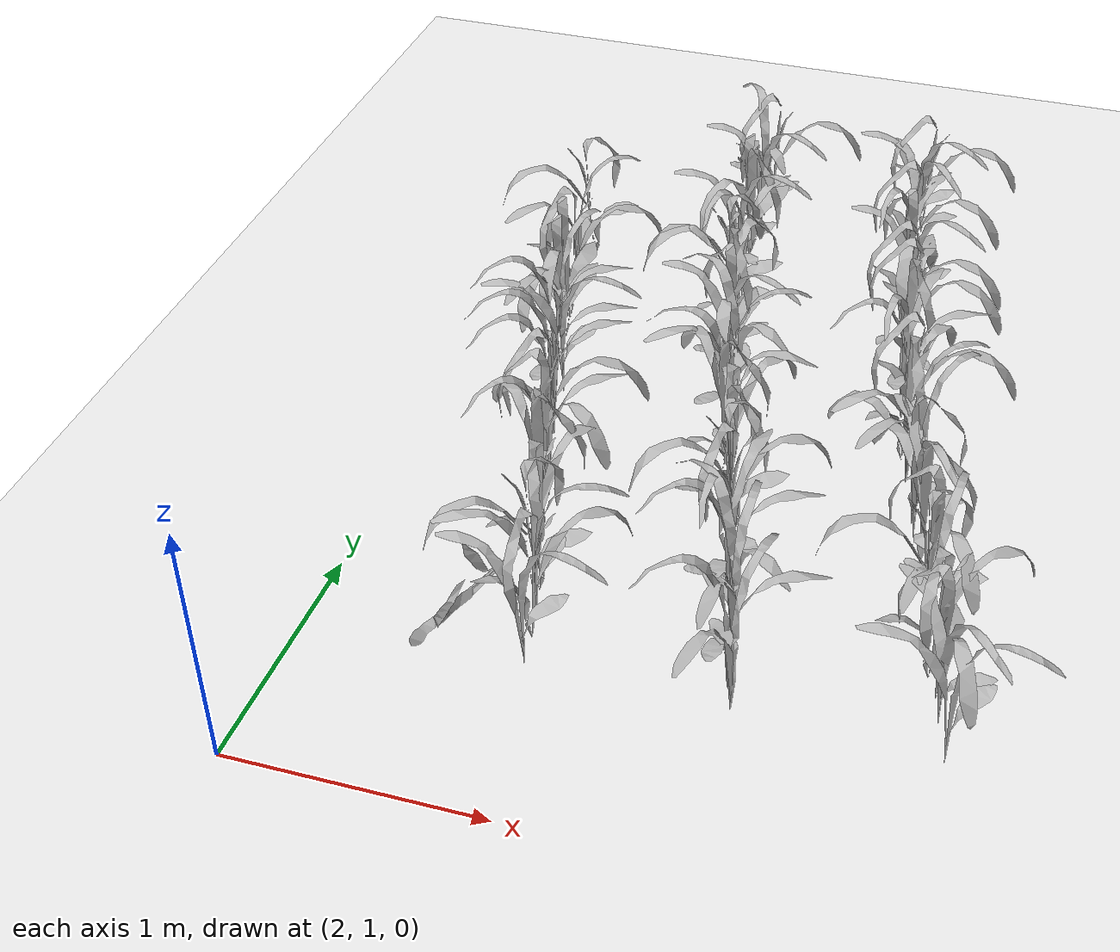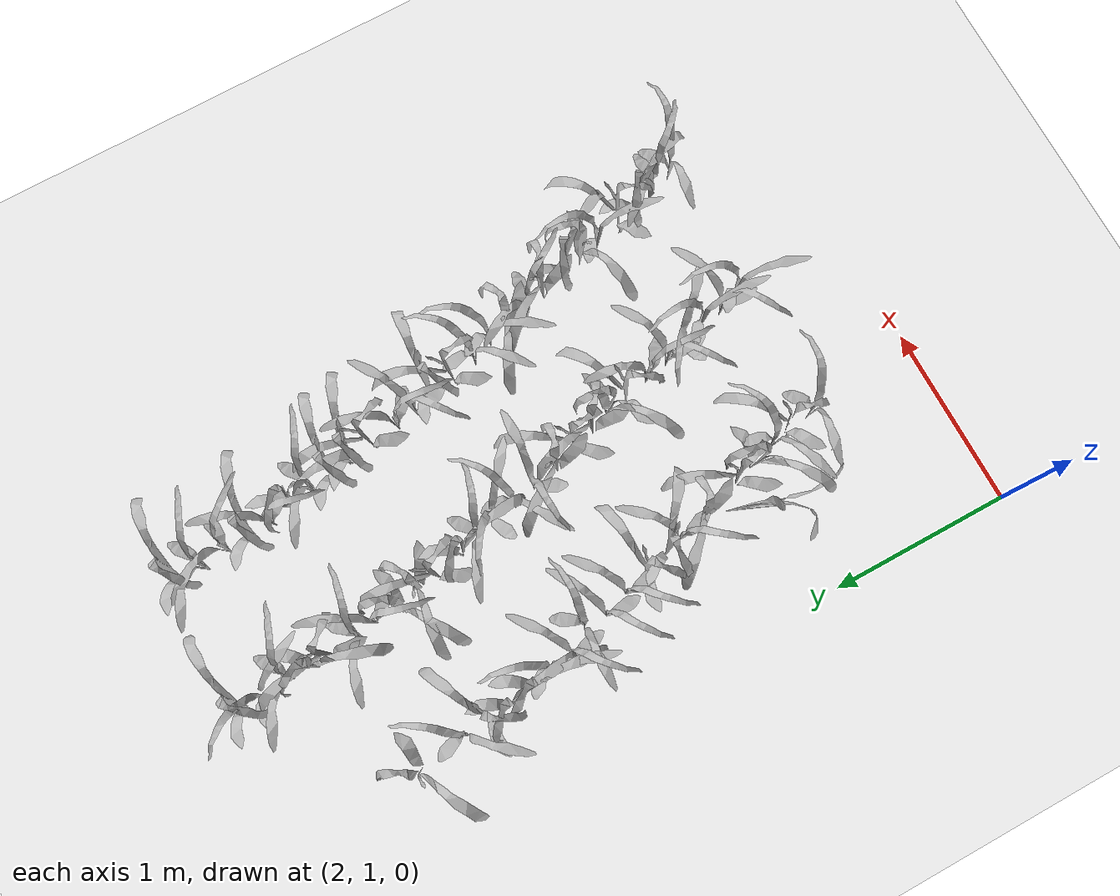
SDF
<sdf version="1.7">
 <world name="default">
  <model name="maize_02_0681">
   <pose>2.85864 1.68509 -0 -5e-06 -2.8e-05 -1.21927</pose>
   <link name="maize_02_link">
    <inertial>
     <pose>0 0 0.01 0 -0 0</pose>
     <mass>0.3</mass>
     <inertia>
      <ixx>0.00334167</ixx>
      <ixy>0</ixy>
      <ixz>0</ixz>
      <iyy>0.00334167</iyy>
      <iyz>0</iyz>
      <izz>1.66667e-05</izz>
     </inertia>
     <pose>0 0 0.1 0 -0 0</pose>
    </inertial>
    <visual name="visual">
     <geometry>
      <mesh><uri>model://maize_02/meshes/maize_02.dae</uri><scale>0.683166 0.683166 0.683166</scale></mesh>
     </geometry>
    </visual>
   </link>
   <static>0</static>
  </model>
  <model name="maize_01_0682">
   <pose>2.83686 1.83012 -0.000245 -1.2e-05 -1.4e-05 1.59859</pose>
   <link name="maize_01_link">
    <inertial>
     <pose>0 0 0.01 0 -0 0</pose>
     <mass>0.3</mass>
     <inertia>
      <ixx>0.00334167</ixx>
      <ixy>0</ixy>
      <ixz>0</ixz>
      <iyy>0.00334167</iyy>
      <iyz>0</iyz>
      <izz>1.66667e-05</izz>
     </inertia>
     <pose>0 0 0.1 0 -0 0</pose>
    </inertial>
    <visual name="visual">
     <geometry>
      <mesh><uri>model://maize_01/meshes/maize_01.dae</uri><scale>0.683166 0.683166 0.683166</scale></mesh>
     </geometry>
    </visual>
   </link>
   <static>0</static>
  </model>
  <model name="maize_02_0683">
   <pose>2.81284 1.93916 -0 -2.8e-05 5e-06 -0.647723</pose>
   <link name="maize_02_link">
    <inertial>
     <pose>0 0 0.01 0 -0 0</pose>
     <mass>0.3</mass>
     <inertia>
      <ixx>0.00334167</ixx>
      <ixy>0</ixy>
      <ixz>0</ixz>
      <iyy>0.00334167</iyy>
      <iyz>0</iyz>
      <izz>1.66667e-05</izz>
     </inertia>
     <pose>0 0 0.1 0 -0 0</pose>
    </inertial>
    <visual name="visual">
     <geometry>
      <mesh><uri>model://maize_02/meshes/maize_02.dae</uri><scale>0.683166 0.683166 0.683166</scale></mesh>
     </geometry>
    </visual>
   </link>
   <static>0</static>
  </model>
  <model name="maize_01_0684">
   <pose>2.76893 2.07996 -1e-06 6e-06 7.9e-05 -1.73099</pose>
   <link name="maize_01_link">
    <inertial>
     <pose>0 0 0.01 0 -0 0</pose>
     <mass>0.3</mass>
     <inertia>
      <ixx>0.00334167</ixx>
      <ixy>0</ixy>
      <ixz>0</ixz>
      <iyy>0.00334167</iyy>
      <iyz>0</iyz>
      <izz>1.66667e-05</izz>
     </inertia>
     <pose>0 0 0.1 0 -0 0</pose>
    </inertial>
    <visual name="visual">
     <geometry>
      <mesh><uri>model://maize_01/meshes/maize_01.dae</uri><scale>0.683166 0.683166 0.683166</scale></mesh>
     </geometry>
    </visual>
   </link>
   <static>0</static>
  </model>
  <model name="maize_01_0685">
   <pose>2.72931 2.19328 -1e-06 8.3e-05 6e-06 2.04066</pose>
   <link name="maize_01_link">
    <inertial>
     <pose>0 0 0.01 0 -0 0</pose>
     <mass>0.3</mass>
     <inertia>
      <ixx>0.00334167</ixx>
      <ixy>0</ixy>
      <ixz>0</ixz>
      <iyy>0.00334167</iyy>
      <iyz>0</iyz>
      <izz>1.66667e-05</izz>
     </inertia>
     <pose>0 0 0.1 0 -0 0</pose>
    </inertial>
    <visual name="visual">
     <geometry>
      <mesh><uri>model://maize_01/meshes/maize_01.dae</uri><scale>0.683166 0.683166 0.683166</scale></mesh>
     </geometry>
    </visual>
   </link>
   <static>0</static>
  </model>
  <model name="maize_02_0686">
   <pose>2.63367 2.31705 0.009953 1.5708 -0.00477 -0.312827</pose>
   <link name="maize_02_link">
    <inertial>
     <pose>0 0 0.01 0 -0 0</pose>
     <mass>0.3</mass>
     <inertia>
      <ixx>0.00334167</ixx>
      <ixy>0</ixy>
      <ixz>0</ixz>
      <iyy>0.00334167</iyy>
      <iyz>0</iyz>
      <izz>1.66667e-05</izz>
     </inertia>
     <pose>0 0 0.1 0 -0 0</pose>
    </inertial>
    <visual name="visual">
     <geometry>
      <mesh><uri>model://maize_02/meshes/maize_02.dae</uri><scale>0.683166 0.683166 0.683166</scale></mesh>
     </geometry>
    </visual>
   </link>
   <static>0</static>
  </model>
  <model name="maize_01_0687">
   <pose>2.66083 2.44288 -1e-06 -6e-06 -8.3e-05 3.14105</pose>
   <link name="maize_01_link">
    <inertial>
     <pose>0 0 0.01 0 -0 0</pose>
     <mass>0.3</mass>
     <inertia>
      <ixx>0.00334167</ixx>
      <ixy>0</ixy>
      <ixz>0</ixz>
      <iyy>0.00334167</iyy>
      <iyz>0</iyz>
      <izz>1.66667e-05</izz>
     </inertia>
     <pose>0 0 0.1 0 -0 0</pose>
    </inertial>
    <visual name="visual">
     <geometry>
      <mesh><uri>model://maize_01/meshes/maize_01.dae</uri><scale>0.683166 0.683166 0.683166</scale></mesh>
     </geometry>
    </visual>
   </link>
   <static>0</static>
  </model>
  <model name="maize_02_0688">
   <pose>2.61881 2.60383 -0 -2.8e-05 5e-06 2.97599</pose>
   <link name="maize_02_link">
    <inertial>
     <pose>0 0 0.01 0 -0 0</pose>
     <mass>0.3</mass>
     <inertia>
      <ixx>0.00334167</ixx>
      <ixy>0</ixy>
      <ixz>0</ixz>
      <iyy>0.00334167</iyy>
      <iyz>0</iyz>
      <izz>1.66667e-05</izz>
     </inertia>
     <pose>0 0 0.1 0 -0 0</pose>
    </inertial>
    <visual name="visual">
     <geometry>
      <mesh><uri>model://maize_02/meshes/maize_02.dae</uri><scale>0.683166 0.683166 0.683166</scale></mesh>
     </geometry>
    </visual>
   </link>
   <static>0</static>
  </model>
  <model name="maize_01_0689">
   <pose>2.57362 2.7054 -0 5e-06 2.8e-05 0.169186</pose>
   <link name="maize_01_link">
    <inertial>
     <pose>0 0 0.01 0 -0 0</pose>
     <mass>0.3</mass>
     <inertia>
      <ixx>0.00334167</ixx>
      <ixy>0</ixy>
      <ixz>0</ixz>
      <iyy>0.00334167</iyy>
      <iyz>0</iyz>
      <izz>1.66667e-05</izz>
     </inertia>
     <pose>0 0 0.1 0 -0 0</pose>
    </inertial>
    <visual name="visual">
     <geometry>
      <mesh><uri>model://maize_01/meshes/maize_01.dae</uri><scale>0.683166 0.683166 0.683166</scale></mesh>
     </geometry>
    </visual>
   </link>
   <static>0</static>
  </model>
  <model name="maize_01_0690">
   <pose>2.52674 2.8424 -0 2.8e-05 5e-06 0.960413</pose>
   <link name="maize_01_link">
    <inertial>
     <pose>0 0 0.01 0 -0 0</pose>
     <mass>0.3</mass>
     <inertia>
      <ixx>0.00334167</ixx>
      <ixy>0</ixy>
      <ixz>0</ixz>
      <iyy>0.00334167</iyy>
      <iyz>0</iyz>
      <izz>1.66667e-05</izz>
     </inertia>
     <pose>0 0 0.1 0 -0 0</pose>
    </inertial>
    <visual name="visual">
     <geometry>
      <mesh><uri>model://maize_01/meshes/maize_01.dae</uri><scale>0.683166 0.683166 0.683166</scale></mesh>
     </geometry>
    </visual>
   </link>
   <static>0</static>
  </model>
  <model name="maize_02_0691">
   <pose>2.50498 2.97878 -1e-06 6e-06 -8.6e-05 2.85564</pose>
   <link name="maize_02_link">
    <inertial>
     <pose>0 0 0.01 0 -0 0</pose>
     <mass>0.3</mass>
     <inertia>
      <ixx>0.00334167</ixx>
      <ixy>0</ixy>
      <ixz>0</ixz>
      <iyy>0.00334167</iyy>
      <iyz>0</iyz>
      <izz>1.66667e-05</izz>
     </inertia>
     <pose>0 0 0.1 0 -0 0</pose>
    </inertial>
    <visual name="visual">
     <geometry>
      <mesh><uri>model://maize_02/meshes/maize_02.dae</uri><scale>0.683166 0.683166 0.683166</scale></mesh>
     </geometry>
    </visual>
   </link>
   <static>0</static>
  </model>
  <model name="maize_02_0692">
   <pose>2.45849 3.1224 -0 5e-06 2.8e-05 2.70201</pose>
   <link name="maize_02_link">
    <inertial>
     <pose>0 0 0.01 0 -0 0</pose>
     <mass>0.3</mass>
     <inertia>
      <ixx>0.00334167</ixx>
      <ixy>0</ixy>
      <ixz>0</ixz>
      <iyy>0.00334167</iyy>
      <iyz>0</iyz>
      <izz>1.66667e-05</izz>
     </inertia>
     <pose>0 0 0.1 0 -0 0</pose>
    </inertial>
    <visual name="visual">
     <geometry>
      <mesh><uri>model://maize_02/meshes/maize_02.dae</uri><scale>0.683166 0.683166 0.683166</scale></mesh>
     </geometry>
    </visual>
   </link>
   <static>0</static>
  </model>
  <model name="maize_02_0693">
   <pose>2.44944 3.25453 -0.000245 1.4e-05 1.2e-05 -1.02514</pose>
   <link name="maize_02_link">
    <inertial>
     <pose>0 0 0.01 0 -0 0</pose>
     <mass>0.3</mass>
     <inertia>
      <ixx>0.00334167</ixx>
      <ixy>0</ixy>
      <ixz>0</ixz>
      <iyy>0.00334167</iyy>
      <iyz>0</iyz>
      <izz>1.66667e-05</izz>
     </inertia>
     <pose>0 0 0.1 0 -0 0</pose>
    </inertial>
    <visual name="visual">
     <geometry>
      <mesh><uri>model://maize_02/meshes/maize_02.dae</uri><scale>0.683166 0.683166 0.683166</scale></mesh>
     </geometry>
    </visual>
   </link>
   <static>0</static>
  </model>
  <model name="maize_02_0694">
   <pose>2.37591 3.3643 -0 -2.8e-05 -5e-06 2.81088</pose>
   <link name="maize_02_link">
    <inertial>
     <pose>0 0 0.01 0 -0 0</pose>
     <mass>0.3</mass>
     <inertia>
      <ixx>0.00334167</ixx>
      <ixy>0</ixy>
      <ixz>0</ixz>
      <iyy>0.00334167</iyy>
      <iyz>0</iyz>
      <izz>1.66667e-05</izz>
     </inertia>
     <pose>0 0 0.1 0 -0 0</pose>
    </inertial>
    <visual name="visual">
     <geometry>
      <mesh><uri>model://maize_02/meshes/maize_02.dae</uri><scale>0.683166 0.683166 0.683166</scale></mesh>
     </geometry>
    </visual>
   </link>
   <static>0</static>
  </model>
  <model name="maize_02_0695">
   <pose>2.35839 3.49972 -0 -2.8e-05 5e-06 0.286672</pose>
   <link name="maize_02_link">
    <inertial>
     <pose>0 0 0.01 0 -0 0</pose>
     <mass>0.3</mass>
     <inertia>
      <ixx>0.00334167</ixx>
      <ixy>0</ixy>
      <ixz>0</ixz>
      <iyy>0.00334167</iyy>
      <iyz>0</iyz>
      <izz>1.66667e-05</izz>
     </inertia>
     <pose>0 0 0.1 0 -0 0</pose>
    </inertial>
    <visual name="visual">
     <geometry>
      <mesh><uri>model://maize_02/meshes/maize_02.dae</uri><scale>0.683166 0.683166 0.683166</scale></mesh>
     </geometry>
    </visual>
   </link>
   <static>0</static>
  </model>
  <model name="maize_01_0696">
   <pose>2.32218 3.62678 -1e-06 8.9e-05 6e-06 -0.851627</pose>
   <link name="maize_01_link">
    <inertial>
     <pose>0 0 0.01 0 -0 0</pose>
     <mass>0.3</mass>
     <inertia>
      <ixx>0.00334167</ixx>
      <ixy>0</ixy>
      <ixz>0</ixz>
      <iyy>0.00334167</iyy>
      <iyz>0</iyz>
      <izz>1.66667e-05</izz>
     </inertia>
     <pose>0 0 0.1 0 -0 0</pose>
    </inertial>
    <visual name="visual">
     <geometry>
      <mesh><uri>model://maize_01/meshes/maize_01.dae</uri><scale>0.683166 0.683166 0.683166</scale></mesh>
     </geometry>
    </visual>
   </link>
   <static>0</static>
  </model>
  <model name="maize_01_0697">
   <pose>2.29265 3.77245 -0.000245 1.2e-05 1.4e-05 -0.662671</pose>
   <link name="maize_01_link">
    <inertial>
     <pose>0 0 0.01 0 -0 0</pose>
     <mass>0.3</mass>
     <inertia>
      <ixx>0.00334167</ixx>
      <ixy>0</ixy>
      <ixz>0</ixz>
      <iyy>0.00334167</iyy>
      <iyz>0</iyz>
      <izz>1.66667e-05</izz>
     </inertia>
     <pose>0 0 0.1 0 -0 0</pose>
    </inertial>
    <visual name="visual">
     <geometry>
      <mesh><uri>model://maize_01/meshes/maize_01.dae</uri><scale>0.683166 0.683166 0.683166</scale></mesh>
     </geometry>
    </visual>
   </link>
   <static>0</static>
  </model>
  <model name="maize_01_0698">
   <pose>2.27115 3.87505 1e-06 3e-06 -0.000156 1.244</pose>
   <link name="maize_01_link">
    <inertial>
     <pose>0 0 0.01 0 -0 0</pose>
     <mass>0.3</mass>
     <inertia>
      <ixx>0.00334167</ixx>
      <ixy>0</ixy>
      <ixz>0</ixz>
      <iyy>0.00334167</iyy>
      <iyz>0</iyz>
      <izz>1.66667e-05</izz>
     </inertia>
     <pose>0 0 0.1 0 -0 0</pose>
    </inertial>
    <visual name="visual">
     <geometry>
      <mesh><uri>model://maize_01/meshes/maize_01.dae</uri><scale>0.683166 0.683166 0.683166</scale></mesh>
     </geometry>
    </visual>
   </link>
   <static>0</static>
  </model>
  <model name="maize_02_0699">
   <pose>2.2586 4.01809 1e-06 3e-06 -0.000156 -0.118566</pose>
   <link name="maize_02_link">
    <inertial>
     <pose>0 0 0.01 0 -0 0</pose>
     <mass>0.3</mass>
     <inertia>
      <ixx>0.00334167</ixx>
      <ixy>0</ixy>
      <ixz>0</ixz>
      <iyy>0.00334167</iyy>
      <iyz>0</iyz>
      <izz>1.66667e-05</izz>
     </inertia>
     <pose>0 0 0.1 0 -0 0</pose>
    </inertial>
    <visual name="visual">
     <geometry>
      <mesh><uri>model://maize_02/meshes/maize_02.dae</uri><scale>0.683166 0.683166 0.683166</scale></mesh>
     </geometry>
    </visual>
   </link>
   <static>0</static>
  </model>
  <model name="maize_01_0701">
   <pose>2.23377 4.30201 -0 2.8e-05 -5e-06 -1.86624</pose>
   <link name="maize_01_link">
    <inertial>
     <pose>0 0 0.01 0 -0 0</pose>
     <mass>0.3</mass>
     <inertia>
      <ixx>0.00334167</ixx>
      <ixy>0</ixy>
      <ixz>0</ixz>
      <iyy>0.00334167</iyy>
      <iyz>0</iyz>
      <izz>1.66667e-05</izz>
     </inertia>
     <pose>0 0 0.1 0 -0 0</pose>
    </inertial>
    <visual name="visual">
     <geometry>
      <mesh><uri>model://maize_01/meshes/maize_01.dae</uri><scale>0.683166 0.683166 0.683166</scale></mesh>
     </geometry>
    </visual>
   </link>
   <static>0</static>
  </model>
  <model name="maize_02_0758">
   <pose>3.61741 1.6928 -0.000245 -1.2e-05 -1.4e-05 0.318507</pose>
   <link name="maize_02_link">
    <inertial>
     <pose>0 0 0.01 0 -0 0</pose>
     <mass>0.3</mass>
     <inertia>
      <ixx>0.00334167</ixx>
      <ixy>0</ixy>
      <ixz>0</ixz>
      <iyy>0.00334167</iyy>
      <iyz>0</iyz>
      <izz>1.66667e-05</izz>
     </inertia>
     <pose>0 0 0.1 0 -0 0</pose>
    </inertial>
    <visual name="visual">
     <geometry>
      <mesh><uri>model://maize_02/meshes/maize_02.dae</uri><scale>0.683166 0.683166 0.683166</scale></mesh>
     </geometry>
    </visual>
   </link>
   <static>0</static>
  </model>
  <model name="maize_02_0759">
   <pose>3.57661 1.80344 -0 -2.8e-05 5e-06 2.62864</pose>
   <link name="maize_02_link">
    <inertial>
     <pose>0 0 0.01 0 -0 0</pose>
     <mass>0.3</mass>
     <inertia>
      <ixx>0.00334167</ixx>
      <ixy>0</ixy>
      <ixz>0</ixz>
      <iyy>0.00334167</iyy>
      <iyz>0</iyz>
      <izz>1.66667e-05</izz>
     </inertia>
     <pose>0 0 0.1 0 -0 0</pose>
    </inertial>
    <visual name="visual">
     <geometry>
      <mesh><uri>model://maize_02/meshes/maize_02.dae</uri><scale>0.683166 0.683166 0.683166</scale></mesh>
     </geometry>
    </visual>
   </link>
   <static>0</static>
  </model>
  <model name="maize_02_0760">
   <pose>3.55474 1.94243 -0.000245 1.4e-05 1.2e-05 0.541066</pose>
   <link name="maize_02_link">
    <inertial>
     <pose>0 0 0.01 0 -0 0</pose>
     <mass>0.3</mass>
     <inertia>
      <ixx>0.00334167</ixx>
      <ixy>0</ixy>
      <ixz>0</ixz>
      <iyy>0.00334167</iyy>
      <iyz>0</iyz>
      <izz>1.66667e-05</izz>
     </inertia>
     <pose>0 0 0.1 0 -0 0</pose>
    </inertial>
    <visual name="visual">
     <geometry>
      <mesh><uri>model://maize_02/meshes/maize_02.dae</uri><scale>0.683166 0.683166 0.683166</scale></mesh>
     </geometry>
    </visual>
   </link>
   <static>0</static>
  </model>
  <model name="maize_02_0761">
   <pose>3.51443 2.0907 -0.000245 1.2e-05 1.4e-05 1.44294</pose>
   <link name="maize_02_link">
    <inertial>
     <pose>0 0 0.01 0 -0 0</pose>
     <mass>0.3</mass>
     <inertia>
      <ixx>0.00334167</ixx>
      <ixy>0</ixy>
      <ixz>0</ixz>
      <iyy>0.00334167</iyy>
      <iyz>0</iyz>
      <izz>1.66667e-05</izz>
     </inertia>
     <pose>0 0 0.1 0 -0 0</pose>
    </inertial>
    <visual name="visual">
     <geometry>
      <mesh><uri>model://maize_02/meshes/maize_02.dae</uri><scale>0.683166 0.683166 0.683166</scale></mesh>
     </geometry>
    </visual>
   </link>
   <static>0</static>
  </model>
  <model name="maize_02_0762">
   <pose>3.46874 2.19632 -0.000245 1.2e-05 1.4e-05 2.70495</pose>
   <link name="maize_02_link">
    <inertial>
     <pose>0 0 0.01 0 -0 0</pose>
     <mass>0.3</mass>
     <inertia>
      <ixx>0.00334167</ixx>
      <ixy>0</ixy>
      <ixz>0</ixz>
      <iyy>0.00334167</iyy>
      <iyz>0</iyz>
      <izz>1.66667e-05</izz>
     </inertia>
     <pose>0 0 0.1 0 -0 0</pose>
    </inertial>
    <visual name="visual">
     <geometry>
      <mesh><uri>model://maize_02/meshes/maize_02.dae</uri><scale>0.683166 0.683166 0.683166</scale></mesh>
     </geometry>
    </visual>
   </link>
   <static>0</static>
  </model>
  <model name="maize_02_0763">
   <pose>3.43889 2.33462 -1e-06 -6e-06 -8.6e-05 -2.6817</pose>
   <link name="maize_02_link">
    <inertial>
     <pose>0 0 0.01 0 -0 0</pose>
     <mass>0.3</mass>
     <inertia>
      <ixx>0.00334167</ixx>
      <ixy>0</ixy>
      <ixz>0</ixz>
      <iyy>0.00334167</iyy>
      <iyz>0</iyz>
      <izz>1.66667e-05</izz>
     </inertia>
     <pose>0 0 0.1 0 -0 0</pose>
    </inertial>
    <visual name="visual">
     <geometry>
      <mesh><uri>model://maize_02/meshes/maize_02.dae</uri><scale>0.683166 0.683166 0.683166</scale></mesh>
     </geometry>
    </visual>
   </link>
   <static>0</static>
  </model>
  <model name="maize_01_0764">
   <pose>3.37742 2.48541 -0.000245 -1.4e-05 -1.2e-05 1.36684</pose>
   <link name="maize_01_link">
    <inertial>
     <pose>0 0 0.01 0 -0 0</pose>
     <mass>0.3</mass>
     <inertia>
      <ixx>0.00334167</ixx>
      <ixy>0</ixy>
      <ixz>0</ixz>
      <iyy>0.00334167</iyy>
      <iyz>0</iyz>
      <izz>1.66667e-05</izz>
     </inertia>
     <pose>0 0 0.1 0 -0 0</pose>
    </inertial>
    <visual name="visual">
     <geometry>
      <mesh><uri>model://maize_01/meshes/maize_01.dae</uri><scale>0.683166 0.683166 0.683166</scale></mesh>
     </geometry>
    </visual>
   </link>
   <static>0</static>
  </model>
  <model name="maize_01_0765">
   <pose>3.37521 2.60744 -1e-06 -8.9e-05 6e-06 -1.7415</pose>
   <link name="maize_01_link">
    <inertial>
     <pose>0 0 0.01 0 -0 0</pose>
     <mass>0.3</mass>
     <inertia>
      <ixx>0.00334167</ixx>
      <ixy>0</ixy>
      <ixz>0</ixz>
      <iyy>0.00334167</iyy>
      <iyz>0</iyz>
      <izz>1.66667e-05</izz>
     </inertia>
     <pose>0 0 0.1 0 -0 0</pose>
    </inertial>
    <visual name="visual">
     <geometry>
      <mesh><uri>model://maize_01/meshes/maize_01.dae</uri><scale>0.683166 0.683166 0.683166</scale></mesh>
     </geometry>
    </visual>
   </link>
   <static>0</static>
  </model>
  <model name="maize_01_0766">
   <pose>3.33444 2.71448 -0 5e-06 2.8e-05 2.68187</pose>
   <link name="maize_01_link">
    <inertial>
     <pose>0 0 0.01 0 -0 0</pose>
     <mass>0.3</mass>
     <inertia>
      <ixx>0.00334167</ixx>
      <ixy>0</ixy>
      <ixz>0</ixz>
      <iyy>0.00334167</iyy>
      <iyz>0</iyz>
      <izz>1.66667e-05</izz>
     </inertia>
     <pose>0 0 0.1 0 -0 0</pose>
    </inertial>
    <visual name="visual">
     <geometry>
      <mesh><uri>model://maize_01/meshes/maize_01.dae</uri><scale>0.683166 0.683166 0.683166</scale></mesh>
     </geometry>
    </visual>
   </link>
   <static>0</static>
  </model>
  <model name="maize_01_0767">
   <pose>3.28709 2.84294 -0 -5e-06 2.8e-05 1.94393</pose>
   <link name="maize_01_link">
    <inertial>
     <pose>0 0 0.01 0 -0 0</pose>
     <mass>0.3</mass>
     <inertia>
      <ixx>0.00334167</ixx>
      <ixy>0</ixy>
      <ixz>0</ixz>
      <iyy>0.00334167</iyy>
      <iyz>0</iyz>
      <izz>1.66667e-05</izz>
     </inertia>
     <pose>0 0 0.1 0 -0 0</pose>
    </inertial>
    <visual name="visual">
     <geometry>
      <mesh><uri>model://maize_01/meshes/maize_01.dae</uri><scale>0.683166 0.683166 0.683166</scale></mesh>
     </geometry>
    </visual>
   </link>
   <static>0</static>
  </model>
  <model name="maize_01_0768">
   <pose>3.23921 2.97679 -0.000245 -1.2e-05 1.4e-05 3.04764</pose>
   <link name="maize_01_link">
    <inertial>
     <pose>0 0 0.01 0 -0 0</pose>
     <mass>0.3</mass>
     <inertia>
      <ixx>0.00334167</ixx>
      <ixy>0</ixy>
      <ixz>0</ixz>
      <iyy>0.00334167</iyy>
      <iyz>0</iyz>
      <izz>1.66667e-05</izz>
     </inertia>
     <pose>0 0 0.1 0 -0 0</pose>
    </inertial>
    <visual name="visual">
     <geometry>
      <mesh><uri>model://maize_01/meshes/maize_01.dae</uri><scale>0.683166 0.683166 0.683166</scale></mesh>
     </geometry>
    </visual>
   </link>
   <static>0</static>
  </model>
  <model name="maize_02_0769">
   <pose>3.21342 3.1286 -0.000245 1.2e-05 1.4e-05 2.14536</pose>
   <link name="maize_02_link">
    <inertial>
     <pose>0 0 0.01 0 -0 0</pose>
     <mass>0.3</mass>
     <inertia>
      <ixx>0.00334167</ixx>
      <ixy>0</ixy>
      <ixz>0</ixz>
      <iyy>0.00334167</iyy>
      <iyz>0</iyz>
      <izz>1.66667e-05</izz>
     </inertia>
     <pose>0 0 0.1 0 -0 0</pose>
    </inertial>
    <visual name="visual">
     <geometry>
      <mesh><uri>model://maize_02/meshes/maize_02.dae</uri><scale>0.683166 0.683166 0.683166</scale></mesh>
     </geometry>
    </visual>
   </link>
   <static>0</static>
  </model>
  <model name="maize_02_0770">
   <pose>3.1745 3.26201 1e-06 -3e-06 -0.000156 -0.435079</pose>
   <link name="maize_02_link">
    <inertial>
     <pose>0 0 0.01 0 -0 0</pose>
     <mass>0.3</mass>
     <inertia>
      <ixx>0.00334167</ixx>
      <ixy>0</ixy>
      <ixz>0</ixz>
      <iyy>0.00334167</iyy>
      <iyz>0</iyz>
      <izz>1.66667e-05</izz>
     </inertia>
     <pose>0 0 0.1 0 -0 0</pose>
    </inertial>
    <visual name="visual">
     <geometry>
      <mesh><uri>model://maize_02/meshes/maize_02.dae</uri><scale>0.683166 0.683166 0.683166</scale></mesh>
     </geometry>
    </visual>
   </link>
   <static>0</static>
  </model>
  <model name="maize_02_0771">
   <pose>3.16677 3.39262 -0.000245 1.2e-05 -1.4e-05 1.49481</pose>
   <link name="maize_02_link">
    <inertial>
     <pose>0 0 0.01 0 -0 0</pose>
     <mass>0.3</mass>
     <inertia>
      <ixx>0.00334167</ixx>
      <ixy>0</ixy>
      <ixz>0</ixz>
      <iyy>0.00334167</iyy>
      <iyz>0</iyz>
      <izz>1.66667e-05</izz>
     </inertia>
     <pose>0 0 0.1 0 -0 0</pose>
    </inertial>
    <visual name="visual">
     <geometry>
      <mesh><uri>model://maize_02/meshes/maize_02.dae</uri><scale>0.683166 0.683166 0.683166</scale></mesh>
     </geometry>
    </visual>
   </link>
   <static>0</static>
  </model>
  <model name="maize_02_0772">
   <pose>3.09443 3.50902 -0 6e-06 -4.8e-05 -1.36464</pose>
   <link name="maize_02_link">
    <inertial>
     <pose>0 0 0.01 0 -0 0</pose>
     <mass>0.3</mass>
     <inertia>
      <ixx>0.00334167</ixx>
      <ixy>0</ixy>
      <ixz>0</ixz>
      <iyy>0.00334167</iyy>
      <iyz>0</iyz>
      <izz>1.66667e-05</izz>
     </inertia>
     <pose>0 0 0.1 0 -0 0</pose>
    </inertial>
    <visual name="visual">
     <geometry>
      <mesh><uri>model://maize_02/meshes/maize_02.dae</uri><scale>0.683166 0.683166 0.683166</scale></mesh>
     </geometry>
    </visual>
   </link>
   <static>0</static>
  </model>
  <model name="maize_01_0773">
   <pose>3.08192 3.6207 1e-06 -0.000156 -3e-06 -0.626444</pose>
   <link name="maize_01_link">
    <inertial>
     <pose>0 0 0.01 0 -0 0</pose>
     <mass>0.3</mass>
     <inertia>
      <ixx>0.00334167</ixx>
      <ixy>0</ixy>
      <ixz>0</ixz>
      <iyy>0.00334167</iyy>
      <iyz>0</iyz>
      <izz>1.66667e-05</izz>
     </inertia>
     <pose>0 0 0.1 0 -0 0</pose>
    </inertial>
    <visual name="visual">
     <geometry>
      <mesh><uri>model://maize_01/meshes/maize_01.dae</uri><scale>0.683166 0.683166 0.683166</scale></mesh>
     </geometry>
    </visual>
   </link>
   <static>0</static>
  </model>
  <model name="maize_01_0774">
   <pose>3.03495 3.77098 1e-06 -0.000156 3e-06 2.30118</pose>
   <link name="maize_01_link">
    <inertial>
     <pose>0 0 0.01 0 -0 0</pose>
     <mass>0.3</mass>
     <inertia>
      <ixx>0.00334167</ixx>
      <ixy>0</ixy>
      <ixz>0</ixz>
      <iyy>0.00334167</iyy>
      <iyz>0</iyz>
      <izz>1.66667e-05</izz>
     </inertia>
     <pose>0 0 0.1 0 -0 0</pose>
    </inertial>
    <visual name="visual">
     <geometry>
      <mesh><uri>model://maize_01/meshes/maize_01.dae</uri><scale>0.683166 0.683166 0.683166</scale></mesh>
     </geometry>
    </visual>
   </link>
   <static>0</static>
  </model>
  <model name="maize_01_0775">
   <pose>3.03702 3.88652 -0 5e-06 2.8e-05 -2.44032</pose>
   <link name="maize_01_link">
    <inertial>
     <pose>0 0 0.01 0 -0 0</pose>
     <mass>0.3</mass>
     <inertia>
      <ixx>0.00334167</ixx>
      <ixy>0</ixy>
      <ixz>0</ixz>
      <iyy>0.00334167</iyy>
      <iyz>0</iyz>
      <izz>1.66667e-05</izz>
     </inertia>
     <pose>0 0 0.1 0 -0 0</pose>
    </inertial>
    <visual name="visual">
     <geometry>
      <mesh><uri>model://maize_01/meshes/maize_01.dae</uri><scale>0.683166 0.683166 0.683166</scale></mesh>
     </geometry>
    </visual>
   </link>
   <static>0</static>
  </model>
  <model name="maize_01_0776">
   <pose>2.98929 4.01502 -0 -4.8e-05 6e-06 -1.78871</pose>
   <link name="maize_01_link">
    <inertial>
     <pose>0 0 0.01 0 -0 0</pose>
     <mass>0.3</mass>
     <inertia>
      <ixx>0.00334167</ixx>
      <ixy>0</ixy>
      <ixz>0</ixz>
      <iyy>0.00334167</iyy>
      <iyz>0</iyz>
      <izz>1.66667e-05</izz>
     </inertia>
     <pose>0 0 0.1 0 -0 0</pose>
    </inertial>
    <visual name="visual">
     <geometry>
      <mesh><uri>model://maize_01/meshes/maize_01.dae</uri><scale>0.683166 0.683166 0.683166</scale></mesh>
     </geometry>
    </visual>
   </link>
   <static>0</static>
  </model>
  <model name="maize_02_0777">
   <pose>2.98387 4.16611 1e-06 0.000156 -3e-06 -2.89064</pose>
   <link name="maize_02_link">
    <inertial>
     <pose>0 0 0.01 0 -0 0</pose>
     <mass>0.3</mass>
     <inertia>
      <ixx>0.00334167</ixx>
      <ixy>0</ixy>
      <ixz>0</ixz>
      <iyy>0.00334167</iyy>
      <iyz>0</iyz>
      <izz>1.66667e-05</izz>
     </inertia>
     <pose>0 0 0.1 0 -0 0</pose>
    </inertial>
    <visual name="visual">
     <geometry>
      <mesh><uri>model://maize_02/meshes/maize_02.dae</uri><scale>0.683166 0.683166 0.683166</scale></mesh>
     </geometry>
    </visual>
   </link>
   <static>0</static>
  </model>
  <model name="maize_02_0778">
   <pose>2.93829 4.26887 -1e-06 -8.9e-05 -6e-06 -1.25895</pose>
   <link name="maize_02_link">
    <inertial>
     <pose>0 0 0.01 0 -0 0</pose>
     <mass>0.3</mass>
     <inertia>
      <ixx>0.00334167</ixx>
      <ixy>0</ixy>
      <ixz>0</ixz>
      <iyy>0.00334167</iyy>
      <iyz>0</iyz>
      <izz>1.66667e-05</izz>
     </inertia>
     <pose>0 0 0.1 0 -0 0</pose>
    </inertial>
    <visual name="visual">
     <geometry>
      <mesh><uri>model://maize_02/meshes/maize_02.dae</uri><scale>0.683166 0.683166 0.683166</scale></mesh>
     </geometry>
    </visual>
   </link>
   <static>0</static>
  </model>
  <model name="maize_01_0779">
   <pose>2.94885 4.42769 -0 2.8e-05 5e-06 2.61046</pose>
   <link name="maize_01_link">
    <inertial>
     <pose>0 0 0.01 0 -0 0</pose>
     <mass>0.3</mass>
     <inertia>
      <ixx>0.00334167</ixx>
      <ixy>0</ixy>
      <ixz>0</ixz>
      <iyy>0.00334167</iyy>
      <iyz>0</iyz>
      <izz>1.66667e-05</izz>
     </inertia>
     <pose>0 0 0.1 0 -0 0</pose>
    </inertial>
    <visual name="visual">
     <geometry>
      <mesh><uri>model://maize_01/meshes/maize_01.dae</uri><scale>0.683166 0.683166 0.683166</scale></mesh>
     </geometry>
    </visual>
   </link>
   <static>0</static>
  </model>
  <model name="maize_01_0780">
   <pose>2.92502 4.52952 -0 -2.8e-05 -5e-06 -1.08564</pose>
   <link name="maize_01_link">
    <inertial>
     <pose>0 0 0.01 0 -0 0</pose>
     <mass>0.3</mass>
     <inertia>
      <ixx>0.00334167</ixx>
      <ixy>0</ixy>
      <ixz>0</ixz>
      <iyy>0.00334167</iyy>
      <iyz>0</iyz>
      <izz>1.66667e-05</izz>
     </inertia>
     <pose>0 0 0.1 0 -0 0</pose>
    </inertial>
    <visual name="visual">
     <geometry>
      <mesh><uri>model://maize_01/meshes/maize_01.dae</uri><scale>0.683166 0.683166 0.683166</scale></mesh>
     </geometry>
    </visual>
   </link>
   <static>0</static>
  </model>
  <model name="maize_02_0781">
   <pose>2.93862 4.67173 -0 5e-06 2.8e-05 -1.42433</pose>
   <link name="maize_02_link">
    <inertial>
     <pose>0 0 0.01 0 -0 0</pose>
     <mass>0.3</mass>
     <inertia>
      <ixx>0.00334167</ixx>
      <ixy>0</ixy>
      <ixz>0</ixz>
      <iyy>0.00334167</iyy>
      <iyz>0</iyz>
      <izz>1.66667e-05</izz>
     </inertia>
     <pose>0 0 0.1 0 -0 0</pose>
    </inertial>
    <visual name="visual">
     <geometry>
      <mesh><uri>model://maize_02/meshes/maize_02.dae</uri><scale>0.683166 0.683166 0.683166</scale></mesh>
     </geometry>
    </visual>
   </link>
   <static>0</static>
  </model>
  <model name="maize_02_0782">
   <pose>2.91746 4.8098 -0 5e-06 -2.8e-05 1.10189</pose>
   <link name="maize_02_link">
    <inertial>
     <pose>0 0 0.01 0 -0 0</pose>
     <mass>0.3</mass>
     <inertia>
      <ixx>0.00334167</ixx>
      <ixy>0</ixy>
      <ixz>0</ixz>
      <iyy>0.00334167</iyy>
      <iyz>0</iyz>
      <izz>1.66667e-05</izz>
     </inertia>
     <pose>0 0 0.1 0 -0 0</pose>
    </inertial>
    <visual name="visual">
     <geometry>
      <mesh><uri>model://maize_02/meshes/maize_02.dae</uri><scale>0.683166 0.683166 0.683166</scale></mesh>
     </geometry>
    </visual>
   </link>
   <static>0</static>
  </model>
  <model name="maize_01_0783">
   <pose>2.92131 4.93248 -1e-06 6e-06 8.3e-05 0.900918</pose>
   <link name="maize_01_link">
    <inertial>
     <pose>0 0 0.01 0 -0 0</pose>
     <mass>0.3</mass>
     <inertia>
      <ixx>0.00334167</ixx>
      <ixy>0</ixy>
      <ixz>0</ixz>
      <iyy>0.00334167</iyy>
      <iyz>0</iyz>
      <izz>1.66667e-05</izz>
     </inertia>
     <pose>0 0 0.1 0 -0 0</pose>
    </inertial>
    <visual name="visual">
     <geometry>
      <mesh><uri>model://maize_01/meshes/maize_01.dae</uri><scale>0.683166 0.683166 0.683166</scale></mesh>
     </geometry>
    </visual>
   </link>
   <static>0</static>
  </model>
  <model name="maize_02_0835">
   <pose>4.37341 1.67672 -1e-06 6e-06 -8.6e-05 -1.1624</pose>
   <link name="maize_02_link">
    <inertial>
     <pose>0 0 0.01 0 -0 0</pose>
     <mass>0.3</mass>
     <inertia>
      <ixx>0.00334167</ixx>
      <ixy>0</ixy>
      <ixz>0</ixz>
      <iyy>0.00334167</iyy>
      <iyz>0</iyz>
      <izz>1.66667e-05</izz>
     </inertia>
     <pose>0 0 0.1 0 -0 0</pose>
    </inertial>
    <visual name="visual">
     <geometry>
      <mesh><uri>model://maize_02/meshes/maize_02.dae</uri><scale>0.683166 0.683166 0.683166</scale></mesh>
     </geometry>
    </visual>
   </link>
   <static>0</static>
  </model>
  <model name="maize_02_0836">
   <pose>4.32406 1.81183 1e-06 -0.000116 -2e-06 -1.85933</pose>
   <link name="maize_02_link">
    <inertial>
     <pose>0 0 0.01 0 -0 0</pose>
     <mass>0.3</mass>
     <inertia>
      <ixx>0.00334167</ixx>
      <ixy>0</ixy>
      <ixz>0</ixz>
      <iyy>0.00334167</iyy>
      <iyz>0</iyz>
      <izz>1.66667e-05</izz>
     </inertia>
     <pose>0 0 0.1 0 -0 0</pose>
    </inertial>
    <visual name="visual">
     <geometry>
      <mesh><uri>model://maize_02/meshes/maize_02.dae</uri><scale>0.683166 0.683166 0.683166</scale></mesh>
     </geometry>
    </visual>
   </link>
   <static>0</static>
  </model>
  <model name="maize_01_0837">
   <pose>4.28975 1.94245 -0.000245 1.2e-05 -1.4e-05 -0.386224</pose>
   <link name="maize_01_link">
    <inertial>
     <pose>0 0 0.01 0 -0 0</pose>
     <mass>0.3</mass>
     <inertia>
      <ixx>0.00334167</ixx>
      <ixy>0</ixy>
      <ixz>0</ixz>
      <iyy>0.00334167</iyy>
      <iyz>0</iyz>
      <izz>1.66667e-05</izz>
     </inertia>
     <pose>0 0 0.1 0 -0 0</pose>
    </inertial>
    <visual name="visual">
     <geometry>
      <mesh><uri>model://maize_01/meshes/maize_01.dae</uri><scale>0.683166 0.683166 0.683166</scale></mesh>
     </geometry>
    </visual>
   </link>
   <static>0</static>
  </model>
  <model name="maize_01_0838">
   <pose>4.24959 2.04535 -1e-06 8.6e-05 6e-06 1.56388</pose>
   <link name="maize_01_link">
    <inertial>
     <pose>0 0 0.01 0 -0 0</pose>
     <mass>0.3</mass>
     <inertia>
      <ixx>0.00334167</ixx>
      <ixy>0</ixy>
      <ixz>0</ixz>
      <iyy>0.00334167</iyy>
      <iyz>0</iyz>
      <izz>1.66667e-05</izz>
     </inertia>
     <pose>0 0 0.1 0 -0 0</pose>
    </inertial>
    <visual name="visual">
     <geometry>
      <mesh><uri>model://maize_01/meshes/maize_01.dae</uri><scale>0.683166 0.683166 0.683166</scale></mesh>
     </geometry>
    </visual>
   </link>
   <static>0</static>
  </model>
  <model name="maize_02_0839">
   <pose>4.21591 2.20441 -0.000245 -1.4e-05 1.2e-05 0.440621</pose>
   <link name="maize_02_link">
    <inertial>
     <pose>0 0 0.01 0 -0 0</pose>
     <mass>0.3</mass>
     <inertia>
      <ixx>0.00334167</ixx>
      <ixy>0</ixy>
      <ixz>0</ixz>
      <iyy>0.00334167</iyy>
      <iyz>0</iyz>
      <izz>1.66667e-05</izz>
     </inertia>
     <pose>0 0 0.1 0 -0 0</pose>
    </inertial>
    <visual name="visual">
     <geometry>
      <mesh><uri>model://maize_02/meshes/maize_02.dae</uri><scale>0.683166 0.683166 0.683166</scale></mesh>
     </geometry>
    </visual>
   </link>
   <static>0</static>
  </model>
  <model name="maize_01_0840">
   <pose>4.18689 2.32714 -0 -2.8e-05 5e-06 -2.10264</pose>
   <link name="maize_01_link">
    <inertial>
     <pose>0 0 0.01 0 -0 0</pose>
     <mass>0.3</mass>
     <inertia>
      <ixx>0.00334167</ixx>
      <ixy>0</ixy>
      <ixz>0</ixz>
      <iyy>0.00334167</iyy>
      <iyz>0</iyz>
      <izz>1.66667e-05</izz>
     </inertia>
     <pose>0 0 0.1 0 -0 0</pose>
    </inertial>
    <visual name="visual">
     <geometry>
      <mesh><uri>model://maize_01/meshes/maize_01.dae</uri><scale>0.683166 0.683166 0.683166</scale></mesh>
     </geometry>
    </visual>
   </link>
   <static>0</static>
  </model>
  <model name="maize_01_0841">
   <pose>4.1631 2.44767 -1e-06 -6e-06 7.9e-05 -0.258109</pose>
   <link name="maize_01_link">
    <inertial>
     <pose>0 0 0.01 0 -0 0</pose>
     <mass>0.3</mass>
     <inertia>
      <ixx>0.00334167</ixx>
      <ixy>0</ixy>
      <ixz>0</ixz>
      <iyy>0.00334167</iyy>
      <iyz>0</iyz>
      <izz>1.66667e-05</izz>
     </inertia>
     <pose>0 0 0.1 0 -0 0</pose>
    </inertial>
    <visual name="visual">
     <geometry>
      <mesh><uri>model://maize_01/meshes/maize_01.dae</uri><scale>0.683166 0.683166 0.683166</scale></mesh>
     </geometry>
    </visual>
   </link>
   <static>0</static>
  </model>
  <model name="maize_01_0842">
   <pose>4.11412 2.58638 -1e-06 -7.9e-05 6e-06 3.03543</pose>
   <link name="maize_01_link">
    <inertial>
     <pose>0 0 0.01 0 -0 0</pose>
     <mass>0.3</mass>
     <inertia>
      <ixx>0.00334167</ixx>
      <ixy>0</ixy>
      <ixz>0</ixz>
      <iyy>0.00334167</iyy>
      <iyz>0</iyz>
      <izz>1.66667e-05</izz>
     </inertia>
     <pose>0 0 0.1 0 -0 0</pose>
    </inertial>
    <visual name="visual">
     <geometry>
      <mesh><uri>model://maize_01/meshes/maize_01.dae</uri><scale>0.683166 0.683166 0.683166</scale></mesh>
     </geometry>
    </visual>
   </link>
   <static>0</static>
  </model>
  <model name="maize_02_0843">
   <pose>4.0572 2.71837 -0 -6e-06 4.8e-05 -2.0507</pose>
   <link name="maize_02_link">
    <inertial>
     <pose>0 0 0.01 0 -0 0</pose>
     <mass>0.3</mass>
     <inertia>
      <ixx>0.00334167</ixx>
      <ixy>0</ixy>
      <ixz>0</ixz>
      <iyy>0.00334167</iyy>
      <iyz>0</iyz>
      <izz>1.66667e-05</izz>
     </inertia>
     <pose>0 0 0.1 0 -0 0</pose>
    </inertial>
    <visual name="visual">
     <geometry>
      <mesh><uri>model://maize_02/meshes/maize_02.dae</uri><scale>0.683166 0.683166 0.683166</scale></mesh>
     </geometry>
    </visual>
   </link>
   <static>0</static>
  </model>
  <model name="maize_01_0844">
   <pose>4.02834 2.84199 -0.000245 1.2e-05 -1.4e-05 -2.78415</pose>
   <link name="maize_01_link">
    <inertial>
     <pose>0 0 0.01 0 -0 0</pose>
     <mass>0.3</mass>
     <inertia>
      <ixx>0.00334167</ixx>
      <ixy>0</ixy>
      <ixz>0</ixz>
      <iyy>0.00334167</iyy>
      <iyz>0</iyz>
      <izz>1.66667e-05</izz>
     </inertia>
     <pose>0 0 0.1 0 -0 0</pose>
    </inertial>
    <visual name="visual">
     <geometry>
      <mesh><uri>model://maize_01/meshes/maize_01.dae</uri><scale>0.683166 0.683166 0.683166</scale></mesh>
     </geometry>
    </visual>
   </link>
   <static>0</static>
  </model>
  <model name="maize_02_0845">
   <pose>4.01788 2.9608 -0 4.8e-05 6e-06 0.031205</pose>
   <link name="maize_02_link">
    <inertial>
     <pose>0 0 0.01 0 -0 0</pose>
     <mass>0.3</mass>
     <inertia>
      <ixx>0.00334167</ixx>
      <ixy>0</ixy>
      <ixz>0</ixz>
      <iyy>0.00334167</iyy>
      <iyz>0</iyz>
      <izz>1.66667e-05</izz>
     </inertia>
     <pose>0 0 0.1 0 -0 0</pose>
    </inertial>
    <visual name="visual">
     <geometry>
      <mesh><uri>model://maize_02/meshes/maize_02.dae</uri><scale>0.683166 0.683166 0.683166</scale></mesh>
     </geometry>
    </visual>
   </link>
   <static>0</static>
  </model>
  <model name="maize_02_0846">
   <pose>3.95624 3.08325 -0 5e-06 -2.8e-05 -0.260496</pose>
   <link name="maize_02_link">
    <inertial>
     <pose>0 0 0.01 0 -0 0</pose>
     <mass>0.3</mass>
     <inertia>
      <ixx>0.00334167</ixx>
      <ixy>0</ixy>
      <ixz>0</ixz>
      <iyy>0.00334167</iyy>
      <iyz>0</iyz>
      <izz>1.66667e-05</izz>
     </inertia>
     <pose>0 0 0.1 0 -0 0</pose>
    </inertial>
    <visual name="visual">
     <geometry>
      <mesh><uri>model://maize_02/meshes/maize_02.dae</uri><scale>0.683166 0.683166 0.683166</scale></mesh>
     </geometry>
    </visual>
   </link>
   <static>0</static>
  </model>
  <model name="maize_01_0847">
   <pose>3.91324 3.2224 -0 -2.8e-05 5e-06 2.10628</pose>
   <link name="maize_01_link">
    <inertial>
     <pose>0 0 0.01 0 -0 0</pose>
     <mass>0.3</mass>
     <inertia>
      <ixx>0.00334167</ixx>
      <ixy>0</ixy>
      <ixz>0</ixz>
      <iyy>0.00334167</iyy>
      <iyz>0</iyz>
      <izz>1.66667e-05</izz>
     </inertia>
     <pose>0 0 0.1 0 -0 0</pose>
    </inertial>
    <visual name="visual">
     <geometry>
      <mesh><uri>model://maize_01/meshes/maize_01.dae</uri><scale>0.683166 0.683166 0.683166</scale></mesh>
     </geometry>
    </visual>
   </link>
   <static>0</static>
  </model>
  <model name="maize_01_0848">
   <pose>3.90669 3.36759 -1e-06 8.6e-05 -6e-06 0.708773</pose>
   <link name="maize_01_link">
    <inertial>
     <pose>0 0 0.01 0 -0 0</pose>
     <mass>0.3</mass>
     <inertia>
      <ixx>0.00334167</ixx>
      <ixy>0</ixy>
      <ixz>0</ixz>
      <iyy>0.00334167</iyy>
      <iyz>0</iyz>
      <izz>1.66667e-05</izz>
     </inertia>
     <pose>0 0 0.1 0 -0 0</pose>
    </inertial>
    <visual name="visual">
     <geometry>
      <mesh><uri>model://maize_01/meshes/maize_01.dae</uri><scale>0.683166 0.683166 0.683166</scale></mesh>
     </geometry>
    </visual>
   </link>
   <static>0</static>
  </model>
  <model name="maize_02_0849">
   <pose>3.85738 3.48096 -0 5e-06 2.8e-05 2.73699</pose>
   <link name="maize_02_link">
    <inertial>
     <pose>0 0 0.01 0 -0 0</pose>
     <mass>0.3</mass>
     <inertia>
      <ixx>0.00334167</ixx>
      <ixy>0</ixy>
      <ixz>0</ixz>
      <iyy>0.00334167</iyy>
      <iyz>0</iyz>
      <izz>1.66667e-05</izz>
     </inertia>
     <pose>0 0 0.1 0 -0 0</pose>
    </inertial>
    <visual name="visual">
     <geometry>
      <mesh><uri>model://maize_02/meshes/maize_02.dae</uri><scale>0.683166 0.683166 0.683166</scale></mesh>
     </geometry>
    </visual>
   </link>
   <static>0</static>
  </model>
  <model name="maize_02_0850">
   <pose>3.83715 3.60168 -0 -2.8e-05 5e-06 -2.72609</pose>
   <link name="maize_02_link">
    <inertial>
     <pose>0 0 0.01 0 -0 0</pose>
     <mass>0.3</mass>
     <inertia>
      <ixx>0.00334167</ixx>
      <ixy>0</ixy>
      <ixz>0</ixz>
      <iyy>0.00334167</iyy>
      <iyz>0</iyz>
      <izz>1.66667e-05</izz>
     </inertia>
     <pose>0 0 0.1 0 -0 0</pose>
    </inertial>
    <visual name="visual">
     <geometry>
      <mesh><uri>model://maize_02/meshes/maize_02.dae</uri><scale>0.683166 0.683166 0.683166</scale></mesh>
     </geometry>
    </visual>
   </link>
   <static>0</static>
  </model>
  <model name="maize_01_0851">
   <pose>3.81224 3.75413 1e-06 0.000156 3e-06 2.32063</pose>
   <link name="maize_01_link">
    <inertial>
     <pose>0 0 0.01 0 -0 0</pose>
     <mass>0.3</mass>
     <inertia>
      <ixx>0.00334167</ixx>
      <ixy>0</ixy>
      <ixz>0</ixz>
      <iyy>0.00334167</iyy>
      <iyz>0</iyz>
      <izz>1.66667e-05</izz>
     </inertia>
     <pose>0 0 0.1 0 -0 0</pose>
    </inertial>
    <visual name="visual">
     <geometry>
      <mesh><uri>model://maize_01/meshes/maize_01.dae</uri><scale>0.683166 0.683166 0.683166</scale></mesh>
     </geometry>
    </visual>
   </link>
   <static>0</static>
  </model>
  <model name="maize_01_0852">
   <pose>3.79673 3.89385 -0 2.8e-05 -5e-06 0.459593</pose>
   <link name="maize_01_link">
    <inertial>
     <pose>0 0 0.01 0 -0 0</pose>
     <mass>0.3</mass>
     <inertia>
      <ixx>0.00334167</ixx>
      <ixy>0</ixy>
      <ixz>0</ixz>
      <iyy>0.00334167</iyy>
      <iyz>0</iyz>
      <izz>1.66667e-05</izz>
     </inertia>
     <pose>0 0 0.1 0 -0 0</pose>
    </inertial>
    <visual name="visual">
     <geometry>
      <mesh><uri>model://maize_01/meshes/maize_01.dae</uri><scale>0.683166 0.683166 0.683166</scale></mesh>
     </geometry>
    </visual>
   </link>
   <static>0</static>
  </model>
  <model name="maize_01_0853">
   <pose>3.75375 4.01831 -0 -2.8e-05 -5e-06 0.592408</pose>
   <link name="maize_01_link">
    <inertial>
     <pose>0 0 0.01 0 -0 0</pose>
     <mass>0.3</mass>
     <inertia>
      <ixx>0.00334167</ixx>
      <ixy>0</ixy>
      <ixz>0</ixz>
      <iyy>0.00334167</iyy>
      <iyz>0</iyz>
      <izz>1.66667e-05</izz>
     </inertia>
     <pose>0 0 0.1 0 -0 0</pose>
    </inertial>
    <visual name="visual">
     <geometry>
      <mesh><uri>model://maize_01/meshes/maize_01.dae</uri><scale>0.683166 0.683166 0.683166</scale></mesh>
     </geometry>
    </visual>
   </link>
   <static>0</static>
  </model>
  <model name="maize_02_0854">
   <pose>3.74876 4.14447 -1e-06 7.9e-05 -6e-06 -1.45204</pose>
   <link name="maize_02_link">
    <inertial>
     <pose>0 0 0.01 0 -0 0</pose>
     <mass>0.3</mass>
     <inertia>
      <ixx>0.00334167</ixx>
      <ixy>0</ixy>
      <ixz>0</ixz>
      <iyy>0.00334167</iyy>
      <iyz>0</iyz>
      <izz>1.66667e-05</izz>
     </inertia>
     <pose>0 0 0.1 0 -0 0</pose>
    </inertial>
    <visual name="visual">
     <geometry>
      <mesh><uri>model://maize_02/meshes/maize_02.dae</uri><scale>0.683166 0.683166 0.683166</scale></mesh>
     </geometry>
    </visual>
   </link>
   <static>0</static>
  </model>
  <model name="maize_01_0855">
   <pose>3.71828 4.2671 -1e-06 -8.6e-05 6e-06 -0.680687</pose>
   <link name="maize_01_link">
    <inertial>
     <pose>0 0 0.01 0 -0 0</pose>
     <mass>0.3</mass>
     <inertia>
      <ixx>0.00334167</ixx>
      <ixy>0</ixy>
      <ixz>0</ixz>
      <iyy>0.00334167</iyy>
      <iyz>0</iyz>
      <izz>1.66667e-05</izz>
     </inertia>
     <pose>0 0 0.1 0 -0 0</pose>
    </inertial>
    <visual name="visual">
     <geometry>
      <mesh><uri>model://maize_01/meshes/maize_01.dae</uri><scale>0.683166 0.683166 0.683166</scale></mesh>
     </geometry>
    </visual>
   </link>
   <static>0</static>
  </model>
  <model name="maize_02_0856">
   <pose>3.68861 4.39768 -1e-06 8.3e-05 6e-06 -2.84804</pose>
   <link name="maize_02_link">
    <inertial>
     <pose>0 0 0.01 0 -0 0</pose>
     <mass>0.3</mass>
     <inertia>
      <ixx>0.00334167</ixx>
      <ixy>0</ixy>
      <ixz>0</ixz>
      <iyy>0.00334167</iyy>
      <iyz>0</iyz>
      <izz>1.66667e-05</izz>
     </inertia>
     <pose>0 0 0.1 0 -0 0</pose>
    </inertial>
    <visual name="visual">
     <geometry>
      <mesh><uri>model://maize_02/meshes/maize_02.dae</uri><scale>0.683166 0.683166 0.683166</scale></mesh>
     </geometry>
    </visual>
   </link>
   <static>0</static>
  </model>
  <model name="maize_01_0857">
   <pose>3.67629 4.51302 -0 -5e-06 -2.8e-05 0.515401</pose>
   <link name="maize_01_link">
    <inertial>
     <pose>0 0 0.01 0 -0 0</pose>
     <mass>0.3</mass>
     <inertia>
      <ixx>0.00334167</ixx>
      <ixy>0</ixy>
      <ixz>0</ixz>
      <iyy>0.00334167</iyy>
      <iyz>0</iyz>
      <izz>1.66667e-05</izz>
     </inertia>
     <pose>0 0 0.1 0 -0 0</pose>
    </inertial>
    <visual name="visual">
     <geometry>
      <mesh><uri>model://maize_01/meshes/maize_01.dae</uri><scale>0.683166 0.683166 0.683166</scale></mesh>
     </geometry>
    </visual>
   </link>
   <static>0</static>
  </model>
  <model name="maize_02_0858">
   <pose>3.67591 4.66544 -0.000245 -1.2e-05 -1.4e-05 -1.92741</pose>
   <link name="maize_02_link">
    <inertial>
     <pose>0 0 0.01 0 -0 0</pose>
     <mass>0.3</mass>
     <inertia>
      <ixx>0.00334167</ixx>
      <ixy>0</ixy>
      <ixz>0</ixz>
      <iyy>0.00334167</iyy>
      <iyz>0</iyz>
      <izz>1.66667e-05</izz>
     </inertia>
     <pose>0 0 0.1 0 -0 0</pose>
    </inertial>
    <visual name="visual">
     <geometry>
      <mesh><uri>model://maize_02/meshes/maize_02.dae</uri><scale>0.683166 0.683166 0.683166</scale></mesh>
     </geometry>
    </visual>
   </link>
   <static>0</static>
  </model>
  <model name="maize_02_0859">
   <pose>3.64962 4.80429 -1e-06 -6e-06 8.3e-05 -1.44429</pose>
   <link name="maize_02_link">
    <inertial>
     <pose>0 0 0.01 0 -0 0</pose>
     <mass>0.3</mass>
     <inertia>
      <ixx>0.00334167</ixx>
      <ixy>0</ixy>
      <ixz>0</ixz>
      <iyy>0.00334167</iyy>
      <iyz>0</iyz>
      <izz>1.66667e-05</izz>
     </inertia>
     <pose>0 0 0.1 0 -0 0</pose>
    </inertial>
    <visual name="visual">
     <geometry>
      <mesh><uri>model://maize_02/meshes/maize_02.dae</uri><scale>0.683166 0.683166 0.683166</scale></mesh>
     </geometry>
    </visual>
   </link>
   <static>0</static>
  </model>
  <model name="maize_01_0860">
   <pose>3.66057 4.93585 -1e-06 -8.6e-05 6e-06 0.712161</pose>
   <link name="maize_01_link">
    <inertial>
     <pose>0 0 0.01 0 -0 0</pose>
     <mass>0.3</mass>
     <inertia>
      <ixx>0.00334167</ixx>
      <ixy>0</ixy>
      <ixz>0</ixz>
      <iyy>0.00334167</iyy>
      <iyz>0</iyz>
      <izz>1.66667e-05</izz>
     </inertia>
     <pose>0 0 0.1 0 -0 0</pose>
    </inertial>
    <visual name="visual">
     <geometry>
      <mesh><uri>model://maize_01/meshes/maize_01.dae</uri><scale>0.683166 0.683166 0.683166</scale></mesh>
     </geometry>
    </visual>
   </link>
   <static>0</static>
  </model>
  <model name="ground_plane">
   <static>1</static>
   <link name="link">
    <collision name="collision">
     <geometry><plane><normal>0 0 1</normal><size>100 100</size></plane></geometry>
     <surface>
      <contact><collide_bitmask>65535</collide_bitmask></contact>
      <friction><ode><mu>100</mu><mu2>50</mu2></ode></friction>
     </surface>
    </collision>
    <visual name="visual">
     <cast_shadows>0</cast_shadows>
     <geometry><plane><normal>0 0 1</normal><size>100 100</size></plane></geometry>
     <material>
      <script><uri>file://media/materials/scripts/gazebo.material</uri><name>Gazebo/Grey</name></script>
     </material>
    </visual>
   </link>
   <pose>-13.7732 9.25996 0 0 -0 0</pose>
  </model>
 </world>
</sdf>
